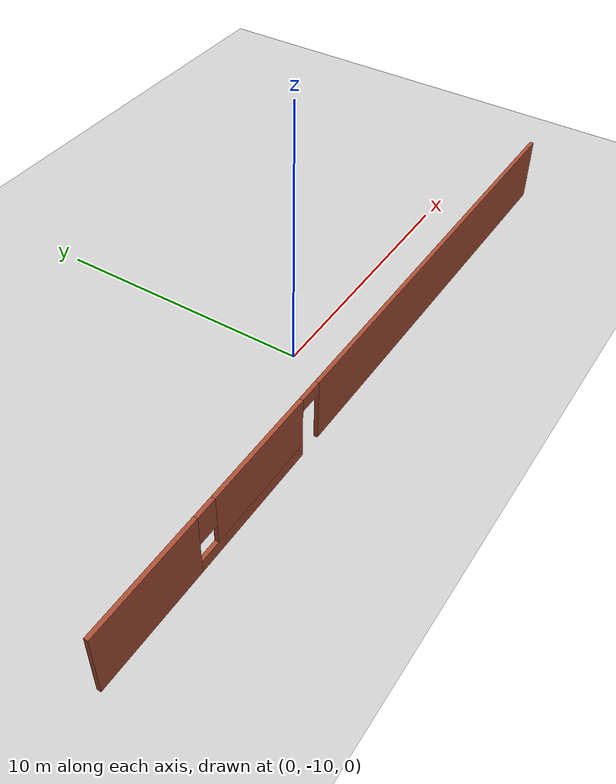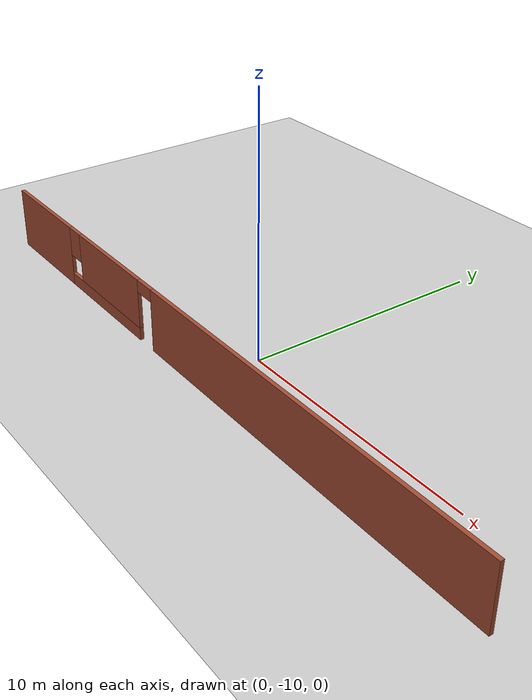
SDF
<sdf version="1.7">
 <world name="default">
  <model name="ground_plane">
   <static>1</static>
   <link name="link">
    <collision name="collision">
     <geometry><plane><normal>0 0 1</normal><size>100 100</size></plane></geometry>
     <surface>
      <contact><collide_bitmask>65535</collide_bitmask></contact>
      <friction><ode><mu>100</mu><mu2>50</mu2></ode></friction>
     </surface>
    </collision>
    <visual name="visual">
     <cast_shadows>0</cast_shadows>
     <geometry><plane><normal>0 0 1</normal><size>100 100</size></plane></geometry>
     <material>
      <script><uri>file://media/materials/scripts/gazebo.material</uri><name>Gazebo/Grey</name></script>
     </material>
    </visual>
   </link>
  </model>
  <model name="newworld">
   <link name="Wall_38">
    <pose>-0.039627 -13.5282 0 0 0 -0.003477</pose>
    <visual name="Wall_38_Visual_2">
     <pose>-6.41871 0 0.25 0 -0 0</pose>
     <geometry><box><size>5.24062 0.15 0.5</size></box></geometry>
     <material>
      <script><uri>file://media/materials/scripts/gazebo.material</uri><name>Gazebo/Bricks</name></script>
      <ambient>1 1 1 1</ambient>
      <shader type="pixel"/>
     </material>
     <meta><layer>0</layer></meta>
    </visual>
    <visual name="Wall_38_Visual_4">
     <pose>-8.63902 0 1.9 0 -0 0</pose>
     <geometry><box><size>0.8 0.15 1.2</size></box></geometry>
     <material>
      <script><uri>file://media/materials/scripts/gazebo.material</uri><name>Gazebo/Bricks</name></script>
      <ambient>1 1 1 1</ambient>
      <shader type="pixel"/>
     </material>
     <meta><layer>0</layer></meta>
    </visual>
    <visual name="Wall_38_Visual_0">
     <pose>-11.237 0 1.25 0 -0 0</pose>
     <geometry><box><size>4.39606 0.15 2.5</size></box></geometry>
     <material>
      <script><uri>file://media/materials/scripts/gazebo.material</uri><name>Gazebo/Bricks</name></script>
      <ambient>1 1 1 1</ambient>
      <shader type="pixel"/>
     </material>
     <meta><layer>0</layer></meta>
    </visual>
    <visual name="Wall_38_Visual_1">
     <pose>5.26834 0 1.25 0 -0 0</pose>
     <geometry><box><size>16.3335 0.15 2.5</size></box></geometry>
     <material>
      <script><uri>file://media/materials/scripts/gazebo.material</uri><name>Gazebo/Bricks</name></script>
      <ambient>1 1 1 1</ambient>
      <shader type="pixel"/>
     </material>
     <meta><layer>0</layer></meta>
    </visual>
    <visual name="Wall_38_Visual_3">
     <pose>-6.01871 0 1.5 0 -0 0</pose>
     <geometry><box><size>4.44062 0.15 2</size></box></geometry>
     <material>
      <script><uri>file://media/materials/scripts/gazebo.material</uri><name>Gazebo/Bricks</name></script>
      <ambient>1 1 1 1</ambient>
      <shader type="pixel"/>
     </material>
     <meta><layer>0</layer></meta>
    </visual>
    <visual name="Wall_38_Visual_5">
     <pose>-3.3484 0 2.25 0 -0 0</pose>
     <geometry><box><size>0.9 0.15 0.5</size></box></geometry>
     <material>
      <script><uri>file://media/materials/scripts/gazebo.material</uri><name>Gazebo/Bricks</name></script>
      <ambient>1 1 1 1</ambient>
      <shader type="pixel"/>
     </material>
     <meta><layer>0</layer></meta>
    </visual>
    <collision name="Wall_38_Collision_0">
     <pose>-11.237 0 1.25 0 -0 0</pose>
     <geometry><box><size>4.39606 0.15 2.5</size></box></geometry>
     <surface>
      <friction>
       <ode><mu>1</mu><mu2>1</mu2><fdir1>0 0 0</fdir1><slip1>0</slip1><slip2>0</slip2></ode>
       <torsional>
        <coefficient>1</coefficient>
        <patch_radius>0</patch_radius>
        <surface_radius>0</surface_radius>
        <use_patch_radius>1</use_patch_radius>
        <ode><slip>0</slip></ode>
       </torsional>
      </friction>
      <bounce><restitution_coefficient>0</restitution_coefficient><threshold>1e+06</threshold></bounce>
      <contact>
       <collide_without_contact>0</collide_without_contact>
       <collide_without_contact_bitmask>1</collide_without_contact_bitmask>
       <collide_bitmask>1</collide_bitmask>
       <ode>
        <soft_cfm>0</soft_cfm>
        <soft_erp>0.2</soft_erp>
        <kp>1e+13</kp>
        <kd>1</kd>
        <max_vel>0.01</max_vel>
        <min_depth>0</min_depth>
       </ode>
       <bullet>
        <split_impulse>1</split_impulse>
        <split_impulse_penetration_threshold>-0.01</split_impulse_penetration_threshold>
        <soft_cfm>0</soft_cfm>
        <soft_erp>0.2</soft_erp>
        <kp>1e+13</kp>
        <kd>1</kd>
       </bullet>
      </contact>
     </surface>
    </collision>
    <collision name="Wall_38_Collision_2">
     <pose>-6.41871 0 0.25 0 -0 0</pose>
     <geometry><box><size>5.24062 0.15 0.5</size></box></geometry>
     <surface>
      <friction>
       <ode><mu>1</mu><mu2>1</mu2><fdir1>0 0 0</fdir1><slip1>0</slip1><slip2>0</slip2></ode>
       <torsional>
        <coefficient>1</coefficient>
        <patch_radius>0</patch_radius>
        <surface_radius>0</surface_radius>
        <use_patch_radius>1</use_patch_radius>
        <ode><slip>0</slip></ode>
       </torsional>
      </friction>
      <bounce><restitution_coefficient>0</restitution_coefficient><threshold>1e+06</threshold></bounce>
      <contact>
       <collide_without_contact>0</collide_without_contact>
       <collide_without_contact_bitmask>1</collide_without_contact_bitmask>
       <collide_bitmask>1</collide_bitmask>
       <ode>
        <soft_cfm>0</soft_cfm>
        <soft_erp>0.2</soft_erp>
        <kp>1e+13</kp>
        <kd>1</kd>
        <max_vel>0.01</max_vel>
        <min_depth>0</min_depth>
       </ode>
       <bullet>
        <split_impulse>1</split_impulse>
        <split_impulse_penetration_threshold>-0.01</split_impulse_penetration_threshold>
        <soft_cfm>0</soft_cfm>
        <soft_erp>0.2</soft_erp>
        <kp>1e+13</kp>
        <kd>1</kd>
       </bullet>
      </contact>
     </surface>
    </collision>
    <collision name="Wall_38_Collision_5">
     <pose>-3.3484 0 2.25 0 -0 0</pose>
     <geometry><box><size>0.9 0.15 0.5</size></box></geometry>
     <surface>
      <friction>
       <ode><mu>1</mu><mu2>1</mu2><fdir1>0 0 0</fdir1><slip1>0</slip1><slip2>0</slip2></ode>
       <torsional>
        <coefficient>1</coefficient>
        <patch_radius>0</patch_radius>
        <surface_radius>0</surface_radius>
        <use_patch_radius>1</use_patch_radius>
        <ode><slip>0</slip></ode>
       </torsional>
      </friction>
      <bounce><restitution_coefficient>0</restitution_coefficient><threshold>1e+06</threshold></bounce>
      <contact>
       <collide_without_contact>0</collide_without_contact>
       <collide_without_contact_bitmask>1</collide_without_contact_bitmask>
       <collide_bitmask>1</collide_bitmask>
       <ode>
        <soft_cfm>0</soft_cfm>
        <soft_erp>0.2</soft_erp>
        <kp>1e+13</kp>
        <kd>1</kd>
        <max_vel>0.01</max_vel>
        <min_depth>0</min_depth>
       </ode>
       <bullet>
        <split_impulse>1</split_impulse>
        <split_impulse_penetration_threshold>-0.01</split_impulse_penetration_threshold>
        <soft_cfm>0</soft_cfm>
        <soft_erp>0.2</soft_erp>
        <kp>1e+13</kp>
        <kd>1</kd>
       </bullet>
      </contact>
     </surface>
    </collision>
    <collision name="Wall_38_Collision_4">
     <pose>-8.63902 0 1.9 0 -0 0</pose>
     <geometry><box><size>0.8 0.15 1.2</size></box></geometry>
     <surface>
      <friction>
       <ode><mu>1</mu><mu2>1</mu2><fdir1>0 0 0</fdir1><slip1>0</slip1><slip2>0</slip2></ode>
       <torsional>
        <coefficient>1</coefficient>
        <patch_radius>0</patch_radius>
        <surface_radius>0</surface_radius>
        <use_patch_radius>1</use_patch_radius>
        <ode><slip>0</slip></ode>
       </torsional>
      </friction>
      <bounce><restitution_coefficient>0</restitution_coefficient><threshold>1e+06</threshold></bounce>
      <contact>
       <collide_without_contact>0</collide_without_contact>
       <collide_without_contact_bitmask>1</collide_without_contact_bitmask>
       <collide_bitmask>1</collide_bitmask>
       <ode>
        <soft_cfm>0</soft_cfm>
        <soft_erp>0.2</soft_erp>
        <kp>1e+13</kp>
        <kd>1</kd>
        <max_vel>0.01</max_vel>
        <min_depth>0</min_depth>
       </ode>
       <bullet>
        <split_impulse>1</split_impulse>
        <split_impulse_penetration_threshold>-0.01</split_impulse_penetration_threshold>
        <soft_cfm>0</soft_cfm>
        <soft_erp>0.2</soft_erp>
        <kp>1e+13</kp>
        <kd>1</kd>
       </bullet>
      </contact>
     </surface>
    </collision>
    <collision name="Wall_38_Collision_3">
     <pose>-6.01871 0 1.5 0 -0 0</pose>
     <geometry><box><size>4.44062 0.15 2</size></box></geometry>
     <surface>
      <friction>
       <ode><mu>1</mu><mu2>1</mu2><fdir1>0 0 0</fdir1><slip1>0</slip1><slip2>0</slip2></ode>
       <torsional>
        <coefficient>1</coefficient>
        <patch_radius>0</patch_radius>
        <surface_radius>0</surface_radius>
        <use_patch_radius>1</use_patch_radius>
        <ode><slip>0</slip></ode>
       </torsional>
      </friction>
      <bounce><restitution_coefficient>0</restitution_coefficient><threshold>1e+06</threshold></bounce>
      <contact>
       <collide_without_contact>0</collide_without_contact>
       <collide_without_contact_bitmask>1</collide_without_contact_bitmask>
       <collide_bitmask>1</collide_bitmask>
       <ode>
        <soft_cfm>0</soft_cfm>
        <soft_erp>0.2</soft_erp>
        <kp>1e+13</kp>
        <kd>1</kd>
        <max_vel>0.01</max_vel>
        <min_depth>0</min_depth>
       </ode>
       <bullet>
        <split_impulse>1</split_impulse>
        <split_impulse_penetration_threshold>-0.01</split_impulse_penetration_threshold>
        <soft_cfm>0</soft_cfm>
        <soft_erp>0.2</soft_erp>
        <kp>1e+13</kp>
        <kd>1</kd>
       </bullet>
      </contact>
     </surface>
    </collision>
    <collision name="Wall_38_Collision_1">
     <pose>5.26834 0 1.25 0 -0 0</pose>
     <geometry><box><size>16.3335 0.15 2.5</size></box></geometry>
     <surface>
      <friction>
       <ode><mu>1</mu><mu2>1</mu2><fdir1>0 0 0</fdir1><slip1>0</slip1><slip2>0</slip2></ode>
       <torsional>
        <coefficient>1</coefficient>
        <patch_radius>0</patch_radius>
        <surface_radius>0</surface_radius>
        <use_patch_radius>1</use_patch_radius>
        <ode><slip>0</slip></ode>
       </torsional>
      </friction>
      <bounce><restitution_coefficient>0</restitution_coefficient><threshold>1e+06</threshold></bounce>
      <contact>
       <collide_without_contact>0</collide_without_contact>
       <collide_without_contact_bitmask>1</collide_without_contact_bitmask>
       <collide_bitmask>1</collide_bitmask>
       <ode>
        <soft_cfm>0</soft_cfm>
        <soft_erp>0.2</soft_erp>
        <kp>1e+13</kp>
        <kd>1</kd>
        <max_vel>0.01</max_vel>
        <min_depth>0</min_depth>
       </ode>
       <bullet>
        <split_impulse>1</split_impulse>
        <split_impulse_penetration_threshold>-0.01</split_impulse_penetration_threshold>
        <soft_cfm>0</soft_cfm>
        <soft_erp>0.2</soft_erp>
        <kp>1e+13</kp>
        <kd>1</kd>
       </bullet>
      </contact>
     </surface>
    </collision>
   </link>
   <static>1</static>
   <pose>0.193711 0.903984 0 0 -0 0</pose>
  </model>
 </world>
</sdf>
